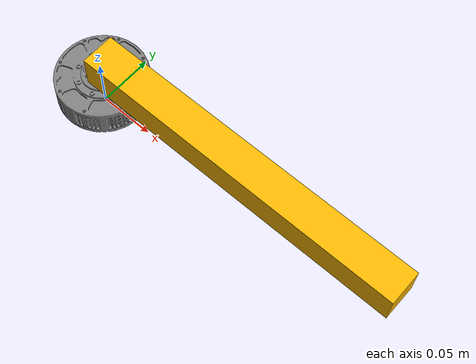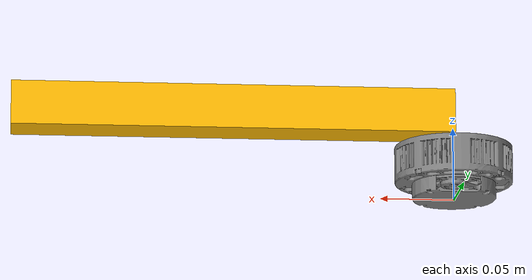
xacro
<?xml version="1.0" ?>
<!-- Generated using onshape-to-robot -->
<!-- Onshape https://cad.onshape.com/documents/ed1b080484db78e51ca91539/w/7397a458a49a8100160f52cd/e/9cc5d95f68bd237afce05dc0 -->
<robot name="robot" xmlns:xacro="http://www.ros.org/wiki/xacro">
<xacro:arg name="sim_mode" default="false"/>

<xacro:if value="$(arg sim_mode)">
  <xacro:include filename="$(find quadro)/description/one_motor.gazebo" />
</xacro:if>

<xacro:unless value="$(arg sim_mode)">
  <xacro:include filename="$(find quadro)/description/one_motor_control.xacro" />
</xacro:unless>
  <!-- Link motor -->
  <link name="motor">
    <inertial>
      <origin xyz="0.00027739 0.000267795 0.0236674" rpy="0 0 0"/>
      <mass value="0.254057"/>
      <inertia ixx="0.000130963" ixy="2.48748e-08" ixz="1.56476e-08" iyy="0.000134228" iyz="-9.95815e-07" izz="0.0002245"/>
    </inertial>
    <!-- Part motor -->
    <visual>
      <origin xyz="-9.04138e-15 0.000467452 0.011" rpy="-1.5708 -1.5708 0"/>
      <geometry>
        <mesh filename="file://$(find quadro)/description/assets/motor.stl"/>
      </geometry>
      <material name="motor_material">
        <color rgba="0.498039 0.498039 0.498039 1"/>
      </material>
    </visual>
    <collision>
      <origin xyz="-9.04138e-15 0.000467452 0.011" rpy="-1.5708 -1.5708 0"/>
      <geometry>
        <mesh filename="file://$(find quadro)/description/assets/motor.stl"/>
      </geometry>
    </collision>
  </link>
  <!-- Link shaft -->
  <link name="shaft">
    <inertial>
      <origin xyz="3.38329e-17 3.80039e-17 -0.00969537" rpy="0 0 0"/>
      <mass value="0.113398"/>
      <inertia ixx="1.2016e-05" ixy="0" ixz="0" iyy="1.2016e-05" iyz="0" izz="1.68287e-05"/>
    </inertial>
    <!-- Part shaft -->
    <visual>
      <origin xyz="0 1.05626e-18 0.01" rpy="1.5708 1.5708 0"/>
      <geometry>
        <mesh filename="file://$(find quadro)/description/assets/shaft.stl"/>
      </geometry>
      <material name="shaft_material">
        <color rgba="0.498039 0.498039 0.498039 1"/>
      </material>
    </visual>
    <collision>
      <origin xyz="0 1.05626e-18 0.01" rpy="1.5708 1.5708 0"/>
      <geometry>
        <mesh filename="file://$(find quadro)/description/assets/shaft.stl"/>
      </geometry>
    </collision>
  </link>
  <!-- Link link -->
  <link name="link">
    <inertial>
      <origin xyz="0.15 -1.94567e-18 -0.015" rpy="0 0 0"/>
      <mass value="2.1195"/>
      <inertia ixx="0.000317925" ixy="0" ixz="0" iyy="0.0160552" iyz="0" izz="0.0160552"/>
    </inertial>
    <!-- Part link -->
    <visual>
      <origin xyz="0 -8.67362e-19 -0.015" rpy="3.14159 -0 0"/>
      <geometry>
        <mesh filename="file://$(find quadro)/description/assets/link.stl"/>
      </geometry>
      <material name="link_material">
        <color rgba="0.980392 0.713725 0.00392157 1"/>
      </material>
    </visual>
    <collision>
      <origin xyz="0 -8.67362e-19 -0.015" rpy="3.14159 -0 0"/>
      <geometry>
        <mesh filename="file://$(find quadro)/description/assets/link.stl"/>
      </geometry>
    </collision>
  </link>
  <!-- Joint from shaft to link -->
  <joint name="link_joint" type="fixed">
    <origin xyz="-3.79471e-19 1.05626e-18 -0.023" rpy="-1.05466e-16 -7.51113e-33 -1.5708"/>
    <parent link="shaft"/>
    <child link="link"/>
    <axis xyz="0 0 1"/>
    <limit effort="10" velocity="10"/>
  </joint>
  <!-- Joint from motor to shaft -->
  <joint name="BR1" type="revolute">
    <origin xyz="-9.04138e-15 0.000467452 0.021" rpy="3.14159 -0 -1.5708"/>
    <parent link="motor"/>
    <child link="shaft"/>
    <axis xyz="0 0 1"/>
    <limit effort="10" velocity="16" lower="-9" upper="9"/>
  </joint>

</robot>
